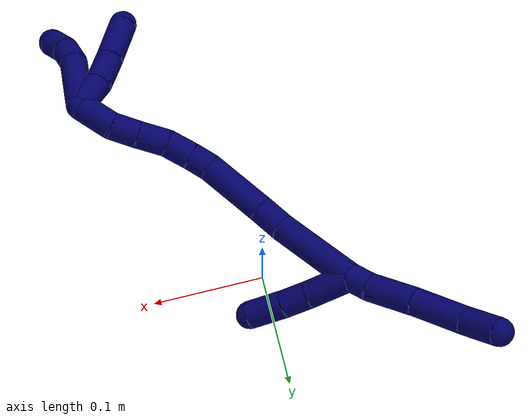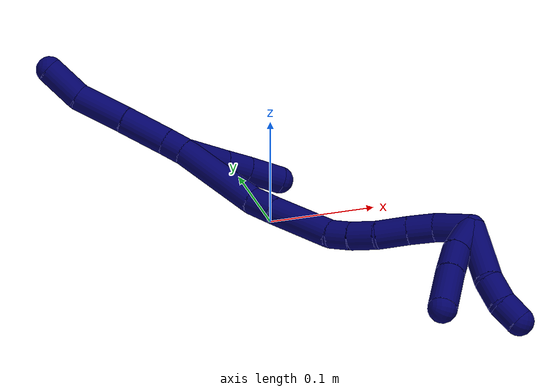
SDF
<sdf version="1.7">
 <world name="default">
  <model name="photoneo_s_sensor">
   <static>1</static>
   <pose>0 0 2 1.57079 1.57079 3.14159</pose>
   <link name="link">
    <inertial><mass>0.1</mass></inertial>
    <sensor name="sensor" type="depth">
     <update_rate>30</update_rate>
     <camera>
      <horizontal_fov>1.22</horizontal_fov>
      <image><width>1920</width><height>1200</height><format>B8G8R8</format></image>
      <clip><near>0.1</near><far>4</far></clip>
      <depth_camera><output>points</output></depth_camera>
     </camera>
     <plugin name="camera_plugin" filename="libgazebo_ros_depth_camera.so">
      <baseline>0.2</baseline>
      <alwaysOn>1</alwaysOn>
      <updateRate>0.0</updateRate>
      <cameraName>camera_ir</cameraName>
      <imageTopicName>/camera/color/image_raw</imageTopicName>
      <cameraInfoTopicName>/camera/color/camera_info</cameraInfoTopicName>
      <depthImageTopicName>/camera/depth/image_raw</depthImageTopicName>
      <depthImageCameraInfoTopicName>/camera/depth/camera_info</depthImageCameraInfoTopicName>
      <pointCloudTopicName>/camera/depth/points</pointCloudTopicName>
      <frameName>fr_optical</frameName>
      <pointCloudCutoff>0.1</pointCloudCutoff>
      <pointCloudCutoffMax>2.0</pointCloudCutoffMax>
      <distortionK1>0</distortionK1>
      <distortionK2>0</distortionK2>
      <distortionK3>0</distortionK3>
      <distortionT1>0</distortionT1>
      <distortionT2>0</distortionT2>
      <CxPrime>0</CxPrime>
      <Cx>0</Cx>
      <Cy>0</Cy>
      <focalLength>0</focalLength>
      <hackBaseline>0</hackBaseline>
     </plugin>
    </sensor>
   </link>
  </model>
  <model name="bin">
   <static>1</static>
   <link name="bottom">
    <collision name="collision-bottom">
     <pose>0 0 -0.01 0 -0 0</pose>
     <geometry><box><size>0.8 0.6 0.02</size></box></geometry>
     <surface>
      <friction><ode><mu>100</mu><mu2>100</mu2></ode></friction>
      <contact><collide_bitmask>65535</collide_bitmask></contact>
     </surface>
    </collision>
   </link>
   <link name="west_wall">
    <collision name="collision-west_wall">
     <pose>-0.41 0 0.1 0 -0 0</pose>
     <geometry><box><size>0.02 0.6 0.2</size></box></geometry>
     <surface>
      <friction><ode><mu>100</mu><mu2>100</mu2></ode></friction>
      <contact><collide_bitmask>65535</collide_bitmask></contact>
     </surface>
    </collision>
   </link>
   <link name="east_wall">
    <collision name="collision-east_wall">
     <pose>0.41 0 0.1 0 -0 0</pose>
     <geometry><box><size>0.02 0.6 0.2</size></box></geometry>
     <surface>
      <friction><ode><mu>100</mu><mu2>100</mu2></ode></friction>
      <contact><collide_bitmask>65535</collide_bitmask></contact>
     </surface>
    </collision>
   </link>
   <link name="south_wall">
    <collision name="collision-south_wall">
     <pose>0 -0.31 0.1 0 -0 0</pose>
     <geometry><box><size>0.8 0.02 0.2</size></box></geometry>
     <surface>
      <friction><ode><mu>100</mu><mu2>100</mu2></ode></friction>
      <contact><collide_bitmask>65535</collide_bitmask></contact>
     </surface>
    </collision>
   </link>
   <link name="north_wall">
    <collision name="collision-north_wall">
     <pose>0 0.31 0.1 0 -0 0</pose>
     <geometry><box><size>0.8 0.02 0.2</size></box></geometry>
     <surface>
      <friction><ode><mu>100</mu><mu2>100</mu2></ode></friction>
      <contact><collide_bitmask>65535</collide_bitmask></contact>
     </surface>
    </collision>
   </link>
  </model>
  <model name="7">
   <static>0</static>
   <link name="7">
    <collision name="collision-cylinder-e_1_2_8">
     <pose>-0.00744 0.000831 -0.007007 -3.02354 -0.811874 2.86833</pose>
     <geometry><cylinder><radius>0.0125</radius><length>0.020508</length></cylinder></geometry>
     <surface>
      <friction><ode><mu>1.16</mu><mu2>1.16</mu2><slip1>0</slip1><slip2>0</slip2></ode></friction>
      <contact><ode><kp>1e+06</kp><kd>1</kd><max_vel>0</max_vel><min_depth>0.001</min_depth></ode></contact>
     </surface>
    </collision>
    <visual name="visual-cylinder-e_1_2_8">
     <pose>-0.00744 0.000831 -0.007007 -3.02354 -0.811874 2.86833</pose>
     <geometry><cylinder><radius>0.0125</radius><length>0.020508</length></cylinder></geometry>
     <material><ambient>0.003922 0 0.403922 1</ambient></material>
    </visual>
    <collision name="collision-cylinder-e_2_8_9">
     <pose>-0.028332 0.002514 -0.031385 -3.0926 -0.65834 2.99838</pose>
     <geometry><cylinder><radius>0.0125</radius><length>0.043973</length></cylinder></geometry>
     <surface>
      <friction><ode><mu>1.16</mu><mu2>1.16</mu2><slip1>0</slip1><slip2>0</slip2></ode></friction>
      <contact><ode><kp>1e+06</kp><kd>1</kd><max_vel>0</max_vel><min_depth>0.001</min_depth></ode></contact>
     </surface>
    </collision>
    <visual name="visual-cylinder-e_2_8_9">
     <pose>-0.028332 0.002514 -0.031385 -3.0926 -0.65834 2.99838</pose>
     <geometry><cylinder><radius>0.0125</radius><length>0.043973</length></cylinder></geometry>
     <material><ambient>0.003922 0 0.403922 1</ambient></material>
    </visual>
    <collision name="collision-cylinder-e_3_9_10">
     <pose>-0.057293 0.005109 -0.067107 -3.04686 -0.699463 2.88311</pose>
     <geometry><cylinder><radius>0.0125</radius><length>0.048184</length></cylinder></geometry>
     <surface>
      <friction><ode><mu>1.16</mu><mu2>1.16</mu2><slip1>0</slip1><slip2>0</slip2></ode></friction>
      <contact><ode><kp>1e+06</kp><kd>1</kd><max_vel>0</max_vel><min_depth>0.001</min_depth></ode></contact>
     </surface>
    </collision>
    <visual name="visual-cylinder-e_3_9_10">
     <pose>-0.057293 0.005109 -0.067107 -3.04686 -0.699463 2.88311</pose>
     <geometry><cylinder><radius>0.0125</radius><length>0.048184</length></cylinder></geometry>
     <material><ambient>0.003922 0 0.403922 1</ambient></material>
    </visual>
    <collision name="collision-cylinder-e_4_10_6">
     <pose>-0.084415 0.002521 -0.09942 2.84073 -0.671299 -2.3218</pose>
     <geometry><cylinder><radius>0.0125</radius><length>0.037336</length></cylinder></geometry>
     <surface>
      <friction><ode><mu>1.16</mu><mu2>1.16</mu2><slip1>0</slip1><slip2>0</slip2></ode></friction>
      <contact><ode><kp>1e+06</kp><kd>1</kd><max_vel>0</max_vel><min_depth>0.001</min_depth></ode></contact>
     </surface>
    </collision>
    <visual name="visual-cylinder-e_4_10_6">
     <pose>-0.084415 0.002521 -0.09942 2.84073 -0.671299 -2.3218</pose>
     <geometry><cylinder><radius>0.0125</radius><length>0.037336</length></cylinder></geometry>
     <material><ambient>0.003922 0 0.403922 1</ambient></material>
    </visual>
    <collision name="collision-cylinder-e_1_2_11">
     <pose>-0.000213 0.000607 0.020662 -0.029355 -0.010283 0.000151</pose>
     <geometry><cylinder><radius>0.0125</radius><length>0.041345</length></cylinder></geometry>
     <surface>
      <friction><ode><mu>1.16</mu><mu2>1.16</mu2><slip1>0</slip1><slip2>0</slip2></ode></friction>
      <contact><ode><kp>1e+06</kp><kd>1</kd><max_vel>0</max_vel><min_depth>0.001</min_depth></ode></contact>
     </surface>
    </collision>
    <visual name="visual-cylinder-e_1_2_11">
     <pose>-0.000213 0.000607 0.020662 -0.029355 -0.010283 0.000151</pose>
     <geometry><cylinder><radius>0.0125</radius><length>0.041345</length></cylinder></geometry>
     <material><ambient>0.003922 0 0.403922 1</ambient></material>
    </visual>
    <collision name="collision-cylinder-e_2_11_12">
     <pose>-0.00019 0.001228 0.053537 -0.001185 0.019236 -1.1e-05</pose>
     <geometry><cylinder><radius>0.0125</radius><length>0.024428</length></cylinder></geometry>
     <surface>
      <friction><ode><mu>1.16</mu><mu2>1.16</mu2><slip1>0</slip1><slip2>0</slip2></ode></friction>
      <contact><ode><kp>1e+06</kp><kd>1</kd><max_vel>0</max_vel><min_depth>0.001</min_depth></ode></contact>
     </surface>
    </collision>
    <visual name="visual-cylinder-e_2_11_12">
     <pose>-0.00019 0.001228 0.053537 -0.001185 0.019236 -1.1e-05</pose>
     <geometry><cylinder><radius>0.0125</radius><length>0.024428</length></cylinder></geometry>
     <material><ambient>0.003922 0 0.403922 1</ambient></material>
    </visual>
    <collision name="collision-cylinder-e_3_12_5">
     <pose>0.001395 0.00139 0.082808 -0.008626 0.078993 -0.000341</pose>
     <geometry><cylinder><radius>0.0125</radius><length>0.034227</length></cylinder></geometry>
     <surface>
      <friction><ode><mu>1.16</mu><mu2>1.16</mu2><slip1>0</slip1><slip2>0</slip2></ode></friction>
      <contact><ode><kp>1e+06</kp><kd>1</kd><max_vel>0</max_vel><min_depth>0.001</min_depth></ode></contact>
     </surface>
    </collision>
    <visual name="visual-cylinder-e_3_12_5">
     <pose>0.001395 0.00139 0.082808 -0.008626 0.078993 -0.000341</pose>
     <geometry><cylinder><radius>0.0125</radius><length>0.034227</length></cylinder></geometry>
     <material><ambient>0.003922 0 0.403922 1</ambient></material>
    </visual>
    <collision name="collision-cylinder-e_1_2_13">
     <pose>0.033555 -0.000436 0.024014 0.018142 0.94955 0.009325</pose>
     <geometry><cylinder><radius>0.0125</radius><length>0.08253</length></cylinder></geometry>
     <surface>
      <friction><ode><mu>1.16</mu><mu2>1.16</mu2><slip1>0</slip1><slip2>0</slip2></ode></friction>
      <contact><ode><kp>1e+06</kp><kd>1</kd><max_vel>0</max_vel><min_depth>0.001</min_depth></ode></contact>
     </surface>
    </collision>
    <visual name="visual-cylinder-e_1_2_13">
     <pose>0.033555 -0.000436 0.024014 0.018142 0.94955 0.009325</pose>
     <geometry><cylinder><radius>0.0125</radius><length>0.08253</length></cylinder></geometry>
     <material><ambient>0.003922 0 0.403922 1</ambient></material>
    </visual>
    <collision name="collision-cylinder-e_2_13_14">
     <pose>0.077982 -0.003894 0.054501 0.436917 0.989486 0.238402</pose>
     <geometry><cylinder><radius>0.0125</radius><length>0.026019</length></cylinder></geometry>
     <surface>
      <friction><ode><mu>1.16</mu><mu2>1.16</mu2><slip1>0</slip1><slip2>0</slip2></ode></friction>
      <contact><ode><kp>1e+06</kp><kd>1</kd><max_vel>0</max_vel><min_depth>0.001</min_depth></ode></contact>
     </surface>
    </collision>
    <visual name="visual-cylinder-e_2_13_14">
     <pose>0.077982 -0.003894 0.054501 0.436917 0.989486 0.238402</pose>
     <geometry><cylinder><radius>0.0125</radius><length>0.026019</length></cylinder></geometry>
     <material><ambient>0.003922 0 0.403922 1</ambient></material>
    </visual>
    <collision name="collision-cylinder-e_3_14_15">
     <pose>0.114134 -0.014583 0.076611 0.455828 0.967546 0.242538</pose>
     <geometry><cylinder><radius>0.0125</radius><length>0.061395</length></cylinder></geometry>
     <surface>
      <friction><ode><mu>1.16</mu><mu2>1.16</mu2><slip1>0</slip1><slip2>0</slip2></ode></friction>
      <contact><ode><kp>1e+06</kp><kd>1</kd><max_vel>0</max_vel><min_depth>0.001</min_depth></ode></contact>
     </surface>
    </collision>
    <visual name="visual-cylinder-e_3_14_15">
     <pose>0.114134 -0.014583 0.076611 0.455828 0.967546 0.242538</pose>
     <geometry><cylinder><radius>0.0125</radius><length>0.061395</length></cylinder></geometry>
     <material><ambient>0.003922 0 0.403922 1</ambient></material>
    </visual>
    <collision name="collision-cylinder-e_4_15_16">
     <pose>0.146227 -0.027099 0.098008 0.699771 0.735563 0.279369</pose>
     <geometry><cylinder><radius>0.0125</radius><length>0.020311</length></cylinder></geometry>
     <surface>
      <friction><ode><mu>1.16</mu><mu2>1.16</mu2><slip1>0</slip1><slip2>0</slip2></ode></friction>
      <contact><ode><kp>1e+06</kp><kd>1</kd><max_vel>0</max_vel><min_depth>0.001</min_depth></ode></contact>
     </surface>
    </collision>
    <visual name="visual-cylinder-e_4_15_16">
     <pose>0.146227 -0.027099 0.098008 0.699771 0.735563 0.279369</pose>
     <geometry><cylinder><radius>0.0125</radius><length>0.020311</length></cylinder></geometry>
     <material><ambient>0.003922 0 0.403922 1</ambient></material>
    </visual>
    <collision name="collision-cylinder-e_5_16_17">
     <pose>0.160338 -0.038874 0.110693 0.785435 0.640304 0.272978</pose>
     <geometry><cylinder><radius>0.0125</radius><length>0.024426</length></cylinder></geometry>
     <surface>
      <friction><ode><mu>1.16</mu><mu2>1.16</mu2><slip1>0</slip1><slip2>0</slip2></ode></friction>
      <contact><ode><kp>1e+06</kp><kd>1</kd><max_vel>0</max_vel><min_depth>0.001</min_depth></ode></contact>
     </surface>
    </collision>
    <visual name="visual-cylinder-e_5_16_17">
     <pose>0.160338 -0.038874 0.110693 0.785435 0.640304 0.272978</pose>
     <geometry><cylinder><radius>0.0125</radius><length>0.024426</length></cylinder></geometry>
     <material><ambient>0.003922 0 0.403922 1</ambient></material>
    </visual>
    <collision name="collision-cylinder-e_6_17_18">
     <pose>0.173335 -0.054359 0.127083 0.735237 0.420103 0.163847</pose>
     <geometry><cylinder><radius>0.0125</radius><length>0.027952</length></cylinder></geometry>
     <surface>
      <friction><ode><mu>1.16</mu><mu2>1.16</mu2><slip1>0</slip1><slip2>0</slip2></ode></friction>
      <contact><ode><kp>1e+06</kp><kd>1</kd><max_vel>0</max_vel><min_depth>0.001</min_depth></ode></contact>
     </surface>
    </collision>
    <visual name="visual-cylinder-e_6_17_18">
     <pose>0.173335 -0.054359 0.127083 0.735237 0.420103 0.163847</pose>
     <geometry><cylinder><radius>0.0125</radius><length>0.027952</length></cylinder></geometry>
     <material><ambient>0.003922 0 0.403922 1</ambient></material>
    </visual>
    <collision name="collision-cylinder-e_7_18_19">
     <pose>0.184615 -0.070158 0.144722 0.724799 0.472431 0.182023</pose>
     <geometry><cylinder><radius>0.0125</radius><length>0.024527</length></cylinder></geometry>
     <surface>
      <friction><ode><mu>1.16</mu><mu2>1.16</mu2><slip1>0</slip1><slip2>0</slip2></ode></friction>
      <contact><ode><kp>1e+06</kp><kd>1</kd><max_vel>0</max_vel><min_depth>0.001</min_depth></ode></contact>
     </surface>
    </collision>
    <visual name="visual-cylinder-e_7_18_19">
     <pose>0.184615 -0.070158 0.144722 0.724799 0.472431 0.182023</pose>
     <geometry><cylinder><radius>0.0125</radius><length>0.024527</length></cylinder></geometry>
     <material><ambient>0.003922 0 0.403922 1</ambient></material>
    </visual>
    <collision name="collision-cylinder-e_8_19_1">
     <pose>0.201184 -0.086002 0.161549 0.78261 0.733129 0.314183</pose>
     <geometry><cylinder><radius>0.0125</radius><length>0.032841</length></cylinder></geometry>
     <surface>
      <friction><ode><mu>1.16</mu><mu2>1.16</mu2><slip1>0</slip1><slip2>0</slip2></ode></friction>
      <contact><ode><kp>1e+06</kp><kd>1</kd><max_vel>0</max_vel><min_depth>0.001</min_depth></ode></contact>
     </surface>
    </collision>
    <visual name="visual-cylinder-e_8_19_1">
     <pose>0.201184 -0.086002 0.161549 0.78261 0.733129 0.314183</pose>
     <geometry><cylinder><radius>0.0125</radius><length>0.032841</length></cylinder></geometry>
     <material><ambient>0.003922 0 0.403922 1</ambient></material>
    </visual>
    <collision name="collision-cylinder-e_1_1_20">
     <pose>0.222527 -0.087599 0.161768 -2.4483 0.756745 -1.6664</pose>
     <geometry><cylinder><radius>0.0125</radius><length>0.030161</length></cylinder></geometry>
     <surface>
      <friction><ode><mu>1.16</mu><mu2>1.16</mu2><slip1>0</slip1><slip2>0</slip2></ode></friction>
      <contact><ode><kp>1e+06</kp><kd>1</kd><max_vel>0</max_vel><min_depth>0.001</min_depth></ode></contact>
     </surface>
    </collision>
    <visual name="visual-cylinder-e_1_1_20">
     <pose>0.222527 -0.087599 0.161768 -2.4483 0.756745 -1.6664</pose>
     <geometry><cylinder><radius>0.0125</radius><length>0.030161</length></cylinder></geometry>
     <material><ambient>0.003922 0 0.403922 1</ambient></material>
    </visual>
    <collision name="collision-cylinder-e_2_20_21">
     <pose>0.244966 -0.075304 0.147582 -2.39829 0.996858 -1.89865</pose>
     <geometry><cylinder><radius>0.0125</radius><length>0.028783</length></cylinder></geometry>
     <surface>
      <friction><ode><mu>1.16</mu><mu2>1.16</mu2><slip1>0</slip1><slip2>0</slip2></ode></friction>
      <contact><ode><kp>1e+06</kp><kd>1</kd><max_vel>0</max_vel><min_depth>0.001</min_depth></ode></contact>
     </surface>
    </collision>
    <visual name="visual-cylinder-e_2_20_21">
     <pose>0.244966 -0.075304 0.147582 -2.39829 0.996858 -1.89865</pose>
     <geometry><cylinder><radius>0.0125</radius><length>0.028783</length></cylinder></geometry>
     <material><ambient>0.003922 0 0.403922 1</ambient></material>
    </visual>
    <collision name="collision-cylinder-e_3_21_4">
     <pose>0.274625 -0.062214 0.13464 -2.31533 1.02765 -1.82086</pose>
     <geometry><cylinder><radius>0.0125</radius><length>0.041057</length></cylinder></geometry>
     <surface>
      <friction><ode><mu>1.16</mu><mu2>1.16</mu2><slip1>0</slip1><slip2>0</slip2></ode></friction>
      <contact><ode><kp>1e+06</kp><kd>1</kd><max_vel>0</max_vel><min_depth>0.001</min_depth></ode></contact>
     </surface>
    </collision>
    <visual name="visual-cylinder-e_3_21_4">
     <pose>0.274625 -0.062214 0.13464 -2.31533 1.02765 -1.82086</pose>
     <geometry><cylinder><radius>0.0125</radius><length>0.041057</length></cylinder></geometry>
     <material><ambient>0.003922 0 0.403922 1</ambient></material>
    </visual>
    <collision name="collision-cylinder-e_1_1_22">
     <pose>0.238407 -0.085478 0.172358 -1.33877 1.22742 -1.01702</pose>
     <geometry><cylinder><radius>0.0125</radius><length>0.055719</length></cylinder></geometry>
     <surface>
      <friction><ode><mu>1.16</mu><mu2>1.16</mu2><slip1>0</slip1><slip2>0</slip2></ode></friction>
      <contact><ode><kp>1e+06</kp><kd>1</kd><max_vel>0</max_vel><min_depth>0.001</min_depth></ode></contact>
     </surface>
    </collision>
    <visual name="visual-cylinder-e_1_1_22">
     <pose>0.238407 -0.085478 0.172358 -1.33877 1.22742 -1.01702</pose>
     <geometry><cylinder><radius>0.0125</radius><length>0.055719</length></cylinder></geometry>
     <material><ambient>0.003922 0 0.403922 1</ambient></material>
    </visual>
    <collision name="collision-cylinder-e_2_22_23">
     <pose>0.274865 -0.072418 0.17881 -0.741216 1.05313 -0.444297</pose>
     <geometry><cylinder><radius>0.0125</radius><length>0.023534</length></cylinder></geometry>
     <surface>
      <friction><ode><mu>1.16</mu><mu2>1.16</mu2><slip1>0</slip1><slip2>0</slip2></ode></friction>
      <contact><ode><kp>1e+06</kp><kd>1</kd><max_vel>0</max_vel><min_depth>0.001</min_depth></ode></contact>
     </surface>
    </collision>
    <visual name="visual-cylinder-e_2_22_23">
     <pose>0.274865 -0.072418 0.17881 -0.741216 1.05313 -0.444297</pose>
     <geometry><cylinder><radius>0.0125</radius><length>0.023534</length></cylinder></geometry>
     <material><ambient>0.003922 0 0.403922 1</ambient></material>
    </visual>
    <collision name="collision-cylinder-e_3_23_3">
     <pose>0.292851 -0.066269 0.189621 -0.328062 0.845328 -0.148616</pose>
     <geometry><cylinder><radius>0.0125</radius><length>0.020747</length></cylinder></geometry>
     <surface>
      <friction><ode><mu>1.16</mu><mu2>1.16</mu2><slip1>0</slip1><slip2>0</slip2></ode></friction>
      <contact><ode><kp>1e+06</kp><kd>1</kd><max_vel>0</max_vel><min_depth>0.001</min_depth></ode></contact>
     </surface>
    </collision>
    <visual name="visual-cylinder-e_3_23_3">
     <pose>0.292851 -0.066269 0.189621 -0.328062 0.845328 -0.148616</pose>
     <geometry><cylinder><radius>0.0125</radius><length>0.020747</length></cylinder></geometry>
     <material><ambient>0.003922 0 0.403922 1</ambient></material>
    </visual>
    <collision name="collision-sphere-3">
     <pose>0.300613 -0.064052 0.196136 0 -0 0</pose>
     <geometry><sphere><radius>0.0125</radius></sphere></geometry>
     <surface>
      <friction><ode><mu>1.16</mu><mu2>1.16</mu2><slip1>0</slip1><slip2>0</slip2></ode></friction>
      <contact><ode><kp>1e+06</kp><kd>1</kd><max_vel>0</max_vel><min_depth>0.001</min_depth></ode></contact>
     </surface>
    </collision>
    <visual name="visual-sphere-3">
     <pose>0.300613 -0.064052 0.196136 0 -0 0</pose>
     <geometry><sphere><radius>0.0125</radius></sphere></geometry>
     <material><ambient>0.003922 0 0.403922 1</ambient></material>
    </visual>
    <collision name="collision-sphere-23">
     <pose>0.28509 -0.068487 0.183105 0 -0 0</pose>
     <geometry><sphere><radius>0.0125</radius></sphere></geometry>
     <surface>
      <friction><ode><mu>1.16</mu><mu2>1.16</mu2><slip1>0</slip1><slip2>0</slip2></ode></friction>
      <contact><ode><kp>1e+06</kp><kd>1</kd><max_vel>0</max_vel><min_depth>0.001</min_depth></ode></contact>
     </surface>
    </collision>
    <visual name="visual-sphere-23">
     <pose>0.28509 -0.068487 0.183105 0 -0 0</pose>
     <geometry><sphere><radius>0.0125</radius></sphere></geometry>
     <material><ambient>0.003922 0 0.403922 1</ambient></material>
    </visual>
    <collision name="collision-sphere-22">
     <pose>0.26464 -0.07635 0.174515 0 -0 0</pose>
     <geometry><sphere><radius>0.0125</radius></sphere></geometry>
     <surface>
      <friction><ode><mu>1.16</mu><mu2>1.16</mu2><slip1>0</slip1><slip2>0</slip2></ode></friction>
      <contact><ode><kp>1e+06</kp><kd>1</kd><max_vel>0</max_vel><min_depth>0.001</min_depth></ode></contact>
     </surface>
    </collision>
    <visual name="visual-sphere-22">
     <pose>0.26464 -0.07635 0.174515 0 -0 0</pose>
     <geometry><sphere><radius>0.0125</radius></sphere></geometry>
     <material><ambient>0.003922 0 0.403922 1</ambient></material>
    </visual>
    <collision name="collision-sphere-4">
     <pose>0.292199 -0.054412 0.12745 0 -0 0</pose>
     <geometry><sphere><radius>0.0125</radius></sphere></geometry>
     <surface>
      <friction><ode><mu>1.16</mu><mu2>1.16</mu2><slip1>0</slip1><slip2>0</slip2></ode></friction>
      <contact><ode><kp>1e+06</kp><kd>1</kd><max_vel>0</max_vel><min_depth>0.001</min_depth></ode></contact>
     </surface>
    </collision>
    <visual name="visual-sphere-4">
     <pose>0.292199 -0.054412 0.12745 0 -0 0</pose>
     <geometry><sphere><radius>0.0125</radius></sphere></geometry>
     <material><ambient>0.003922 0 0.403922 1</ambient></material>
    </visual>
    <collision name="collision-sphere-21">
     <pose>0.257051 -0.070017 0.141829 0 -0 0</pose>
     <geometry><sphere><radius>0.0125</radius></sphere></geometry>
     <surface>
      <friction><ode><mu>1.16</mu><mu2>1.16</mu2><slip1>0</slip1><slip2>0</slip2></ode></friction>
      <contact><ode><kp>1e+06</kp><kd>1</kd><max_vel>0</max_vel><min_depth>0.001</min_depth></ode></contact>
     </surface>
    </collision>
    <visual name="visual-sphere-21">
     <pose>0.257051 -0.070017 0.141829 0 -0 0</pose>
     <geometry><sphere><radius>0.0125</radius></sphere></geometry>
     <material><ambient>0.003922 0 0.403922 1</ambient></material>
    </visual>
    <collision name="collision-sphere-20">
     <pose>0.23288 -0.080592 0.153335 0 -0 0</pose>
     <geometry><sphere><radius>0.0125</radius></sphere></geometry>
     <surface>
      <friction><ode><mu>1.16</mu><mu2>1.16</mu2><slip1>0</slip1><slip2>0</slip2></ode></friction>
      <contact><ode><kp>1e+06</kp><kd>1</kd><max_vel>0</max_vel><min_depth>0.001</min_depth></ode></contact>
     </surface>
    </collision>
    <visual name="visual-sphere-20">
     <pose>0.23288 -0.080592 0.153335 0 -0 0</pose>
     <geometry><sphere><radius>0.0125</radius></sphere></geometry>
     <material><ambient>0.003922 0 0.403922 1</ambient></material>
    </visual>
    <collision name="collision-sphere-11">
     <pose>-0.000425 0.001213 0.041325 0 -0 0</pose>
     <geometry><sphere><radius>0.0125</radius></sphere></geometry>
     <surface>
      <friction><ode><mu>1.16</mu><mu2>1.16</mu2><slip1>0</slip1><slip2>0</slip2></ode></friction>
      <contact><ode><kp>1e+06</kp><kd>1</kd><max_vel>0</max_vel><min_depth>0.001</min_depth></ode></contact>
     </surface>
    </collision>
    <visual name="visual-sphere-11">
     <pose>-0.000425 0.001213 0.041325 0 -0 0</pose>
     <geometry><sphere><radius>0.0125</radius></sphere></geometry>
     <material><ambient>0.003922 0 0.403922 1</ambient></material>
    </visual>
    <collision name="collision-sphere-6">
     <pose>-0.096027 -0.00181 -0.113381 0 -0 0</pose>
     <geometry><sphere><radius>0.0125</radius></sphere></geometry>
     <surface>
      <friction><ode><mu>1.16</mu><mu2>1.16</mu2><slip1>0</slip1><slip2>0</slip2></ode></friction>
      <contact><ode><kp>1e+06</kp><kd>1</kd><max_vel>0</max_vel><min_depth>0.001</min_depth></ode></contact>
     </surface>
    </collision>
    <visual name="visual-sphere-6">
     <pose>-0.096027 -0.00181 -0.113381 0 -0 0</pose>
     <geometry><sphere><radius>0.0125</radius></sphere></geometry>
     <material><ambient>0.003922 0 0.403922 1</ambient></material>
    </visual>
    <collision name="collision-sphere-10">
     <pose>-0.072804 0.006853 -0.08546 0 -0 0</pose>
     <geometry><sphere><radius>0.0125</radius></sphere></geometry>
     <surface>
      <friction><ode><mu>1.16</mu><mu2>1.16</mu2><slip1>0</slip1><slip2>0</slip2></ode></friction>
      <contact><ode><kp>1e+06</kp><kd>1</kd><max_vel>0</max_vel><min_depth>0.001</min_depth></ode></contact>
     </surface>
    </collision>
    <visual name="visual-sphere-10">
     <pose>-0.072804 0.006853 -0.08546 0 -0 0</pose>
     <geometry><sphere><radius>0.0125</radius></sphere></geometry>
     <material><ambient>0.003922 0 0.403922 1</ambient></material>
    </visual>
    <collision name="collision-sphere-9">
     <pose>-0.041783 0.003366 -0.048755 0 -0 0</pose>
     <geometry><sphere><radius>0.0125</radius></sphere></geometry>
     <surface>
      <friction><ode><mu>1.16</mu><mu2>1.16</mu2><slip1>0</slip1><slip2>0</slip2></ode></friction>
      <contact><ode><kp>1e+06</kp><kd>1</kd><max_vel>0</max_vel><min_depth>0.001</min_depth></ode></contact>
     </surface>
    </collision>
    <visual name="visual-sphere-9">
     <pose>-0.041783 0.003366 -0.048755 0 -0 0</pose>
     <geometry><sphere><radius>0.0125</radius></sphere></geometry>
     <material><ambient>0.003922 0 0.403922 1</ambient></material>
    </visual>
    <collision name="collision-sphere-2">
     <geometry><sphere><radius>0.0125</radius></sphere></geometry>
     <surface>
      <friction><ode><mu>1.16</mu><mu2>1.16</mu2><slip1>0</slip1><slip2>0</slip2></ode></friction>
      <contact><ode><kp>1e+06</kp><kd>1</kd><max_vel>0</max_vel><min_depth>0.001</min_depth></ode></contact>
     </surface>
    </collision>
    <visual name="visual-sphere-2">
     <geometry><sphere><radius>0.0125</radius></sphere></geometry>
     <material><ambient>0.003922 0 0.403922 1</ambient></material>
    </visual>
    <collision name="collision-sphere-19">
     <pose>0.190196 -0.077398 0.152897 0 -0 0</pose>
     <geometry><sphere><radius>0.0125</radius></sphere></geometry>
     <surface>
      <friction><ode><mu>1.16</mu><mu2>1.16</mu2><slip1>0</slip1><slip2>0</slip2></ode></friction>
      <contact><ode><kp>1e+06</kp><kd>1</kd><max_vel>0</max_vel><min_depth>0.001</min_depth></ode></contact>
     </surface>
    </collision>
    <visual name="visual-sphere-19">
     <pose>0.190196 -0.077398 0.152897 0 -0 0</pose>
     <geometry><sphere><radius>0.0125</radius></sphere></geometry>
     <material><ambient>0.003922 0 0.403922 1</ambient></material>
    </visual>
    <collision name="collision-sphere-8">
     <pose>-0.01488 0.001662 -0.014014 0 -0 0</pose>
     <geometry><sphere><radius>0.0125</radius></sphere></geometry>
     <surface>
      <friction><ode><mu>1.16</mu><mu2>1.16</mu2><slip1>0</slip1><slip2>0</slip2></ode></friction>
      <contact><ode><kp>1e+06</kp><kd>1</kd><max_vel>0</max_vel><min_depth>0.001</min_depth></ode></contact>
     </surface>
    </collision>
    <visual name="visual-sphere-8">
     <pose>-0.01488 0.001662 -0.014014 0 -0 0</pose>
     <geometry><sphere><radius>0.0125</radius></sphere></geometry>
     <material><ambient>0.003922 0 0.403922 1</ambient></material>
    </visual>
    <collision name="collision-sphere-12">
     <pose>4.5e-05 0.001242 0.065749 0 -0 0</pose>
     <geometry><sphere><radius>0.0125</radius></sphere></geometry>
     <surface>
      <friction><ode><mu>1.16</mu><mu2>1.16</mu2><slip1>0</slip1><slip2>0</slip2></ode></friction>
      <contact><ode><kp>1e+06</kp><kd>1</kd><max_vel>0</max_vel><min_depth>0.001</min_depth></ode></contact>
     </surface>
    </collision>
    <visual name="visual-sphere-12">
     <pose>4.5e-05 0.001242 0.065749 0 -0 0</pose>
     <geometry><sphere><radius>0.0125</radius></sphere></geometry>
     <material><ambient>0.003922 0 0.403922 1</ambient></material>
    </visual>
    <collision name="collision-sphere-5">
     <pose>0.002746 0.001537 0.099867 0 -0 0</pose>
     <geometry><sphere><radius>0.0125</radius></sphere></geometry>
     <surface>
      <friction><ode><mu>1.16</mu><mu2>1.16</mu2><slip1>0</slip1><slip2>0</slip2></ode></friction>
      <contact><ode><kp>1e+06</kp><kd>1</kd><max_vel>0</max_vel><min_depth>0.001</min_depth></ode></contact>
     </surface>
    </collision>
    <visual name="visual-sphere-5">
     <pose>0.002746 0.001537 0.099867 0 -0 0</pose>
     <geometry><sphere><radius>0.0125</radius></sphere></geometry>
     <material><ambient>0.003922 0 0.403922 1</ambient></material>
    </visual>
    <collision name="collision-sphere-13">
     <pose>0.067109 -0.000871 0.048028 0 -0 0</pose>
     <geometry><sphere><radius>0.0125</radius></sphere></geometry>
     <surface>
      <friction><ode><mu>1.16</mu><mu2>1.16</mu2><slip1>0</slip1><slip2>0</slip2></ode></friction>
      <contact><ode><kp>1e+06</kp><kd>1</kd><max_vel>0</max_vel><min_depth>0.001</min_depth></ode></contact>
     </surface>
    </collision>
    <visual name="visual-sphere-13">
     <pose>0.067109 -0.000871 0.048028 0 -0 0</pose>
     <geometry><sphere><radius>0.0125</radius></sphere></geometry>
     <material><ambient>0.003922 0 0.403922 1</ambient></material>
    </visual>
    <collision name="collision-sphere-14">
     <pose>0.088854 -0.006917 0.060974 0 -0 0</pose>
     <geometry><sphere><radius>0.0125</radius></sphere></geometry>
     <surface>
      <friction><ode><mu>1.16</mu><mu2>1.16</mu2><slip1>0</slip1><slip2>0</slip2></ode></friction>
      <contact><ode><kp>1e+06</kp><kd>1</kd><max_vel>0</max_vel><min_depth>0.001</min_depth></ode></contact>
     </surface>
    </collision>
    <visual name="visual-sphere-14">
     <pose>0.088854 -0.006917 0.060974 0 -0 0</pose>
     <geometry><sphere><radius>0.0125</radius></sphere></geometry>
     <material><ambient>0.003922 0 0.403922 1</ambient></material>
    </visual>
    <collision name="collision-sphere-15">
     <pose>0.139413 -0.02225 0.092248 0 -0 0</pose>
     <geometry><sphere><radius>0.0125</radius></sphere></geometry>
     <surface>
      <friction><ode><mu>1.16</mu><mu2>1.16</mu2><slip1>0</slip1><slip2>0</slip2></ode></friction>
      <contact><ode><kp>1e+06</kp><kd>1</kd><max_vel>0</max_vel><min_depth>0.001</min_depth></ode></contact>
     </surface>
    </collision>
    <visual name="visual-sphere-15">
     <pose>0.139413 -0.02225 0.092248 0 -0 0</pose>
     <geometry><sphere><radius>0.0125</radius></sphere></geometry>
     <material><ambient>0.003922 0 0.403922 1</ambient></material>
    </visual>
    <collision name="collision-sphere-16">
     <pose>0.153041 -0.031949 0.103768 0 -0 0</pose>
     <geometry><sphere><radius>0.0125</radius></sphere></geometry>
     <surface>
      <friction><ode><mu>1.16</mu><mu2>1.16</mu2><slip1>0</slip1><slip2>0</slip2></ode></friction>
      <contact><ode><kp>1e+06</kp><kd>1</kd><max_vel>0</max_vel><min_depth>0.001</min_depth></ode></contact>
     </surface>
    </collision>
    <visual name="visual-sphere-16">
     <pose>0.153041 -0.031949 0.103768 0 -0 0</pose>
     <geometry><sphere><radius>0.0125</radius></sphere></geometry>
     <material><ambient>0.003922 0 0.403922 1</ambient></material>
    </visual>
    <collision name="collision-sphere-17">
     <pose>0.167635 -0.0458 0.117619 0 -0 0</pose>
     <geometry><sphere><radius>0.0125</radius></sphere></geometry>
     <surface>
      <friction><ode><mu>1.16</mu><mu2>1.16</mu2><slip1>0</slip1><slip2>0</slip2></ode></friction>
      <contact><ode><kp>1e+06</kp><kd>1</kd><max_vel>0</max_vel><min_depth>0.001</min_depth></ode></contact>
     </surface>
    </collision>
    <visual name="visual-sphere-17">
     <pose>0.167635 -0.0458 0.117619 0 -0 0</pose>
     <geometry><sphere><radius>0.0125</radius></sphere></geometry>
     <material><ambient>0.003922 0 0.403922 1</ambient></material>
    </visual>
    <collision name="collision-sphere-18">
     <pose>0.179035 -0.062918 0.136547 0 -0 0</pose>
     <geometry><sphere><radius>0.0125</radius></sphere></geometry>
     <surface>
      <friction><ode><mu>1.16</mu><mu2>1.16</mu2><slip1>0</slip1><slip2>0</slip2></ode></friction>
      <contact><ode><kp>1e+06</kp><kd>1</kd><max_vel>0</max_vel><min_depth>0.001</min_depth></ode></contact>
     </surface>
    </collision>
    <visual name="visual-sphere-18">
     <pose>0.179035 -0.062918 0.136547 0 -0 0</pose>
     <geometry><sphere><radius>0.0125</radius></sphere></geometry>
     <material><ambient>0.003922 0 0.403922 1</ambient></material>
    </visual>
    <collision name="collision-sphere-1">
     <pose>0.212173 -0.094606 0.170201 0 -0 0</pose>
     <geometry><sphere><radius>0.0125</radius></sphere></geometry>
     <surface>
      <friction><ode><mu>1.16</mu><mu2>1.16</mu2><slip1>0</slip1><slip2>0</slip2></ode></friction>
      <contact><ode><kp>1e+06</kp><kd>1</kd><max_vel>0</max_vel><min_depth>0.001</min_depth></ode></contact>
     </surface>
    </collision>
    <visual name="visual-sphere-1">
     <pose>0.212173 -0.094606 0.170201 0 -0 0</pose>
     <geometry><sphere><radius>0.0125</radius></sphere></geometry>
     <material><ambient>0.003922 0 0.403922 1</ambient></material>
    </visual>
    <inertial>
     <pose>0.104349 -0.030977 0.072177 0 -0 0</pose>
     <mass>0.75</mass>
     <inertia>
      <ixx>6.6e-05</ixx>
      <ixy>0</ixy>
      <ixz>0</ixz>
      <iyy>0.000143</iyy>
      <iyz>0</iyz>
      <izz>-6.8e-05</izz>
     </inertia>
    </inertial>
   </link>
   <pose>-0.070278 0.034534 0.065267 -1.98759 0.106968 -1.57122</pose>
  </model>
 </world>
</sdf>
